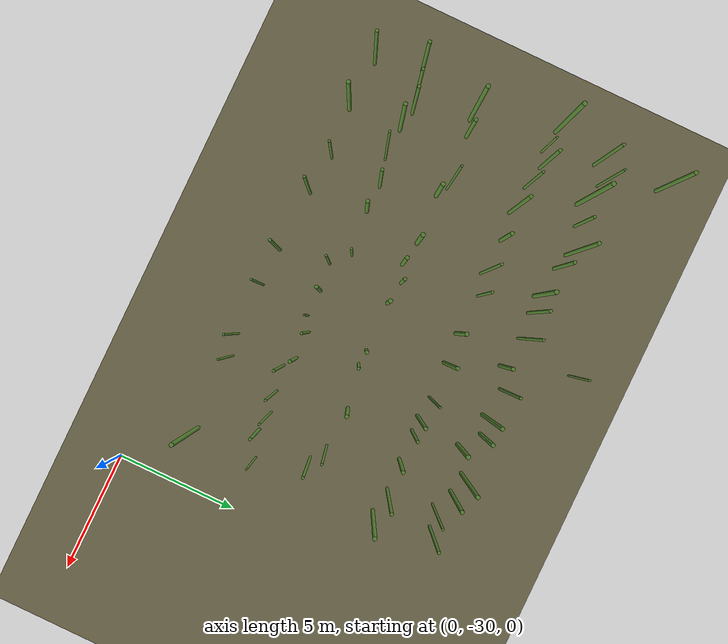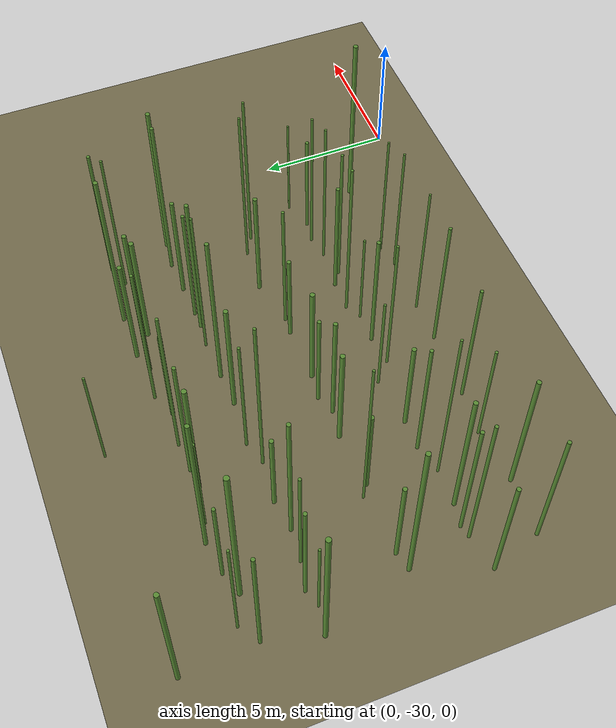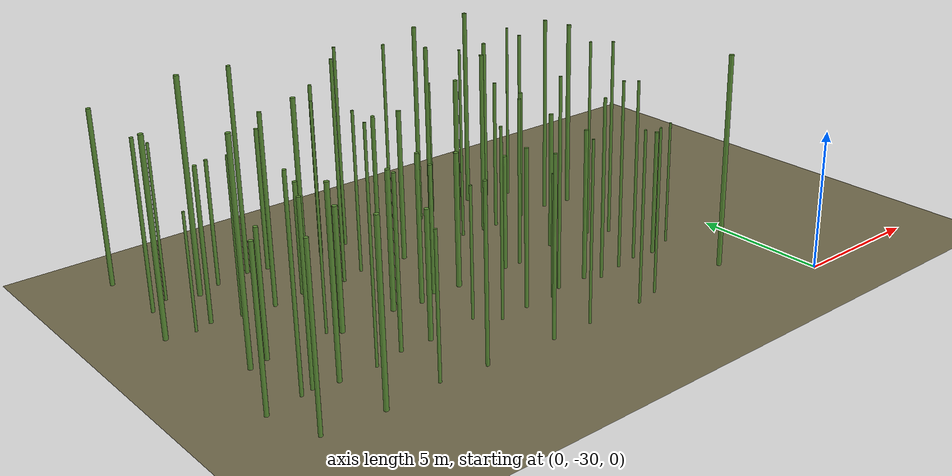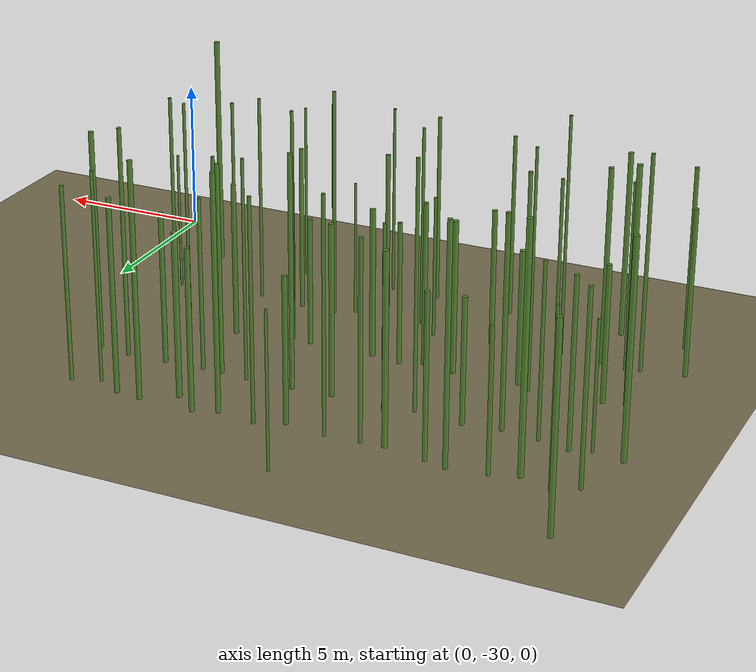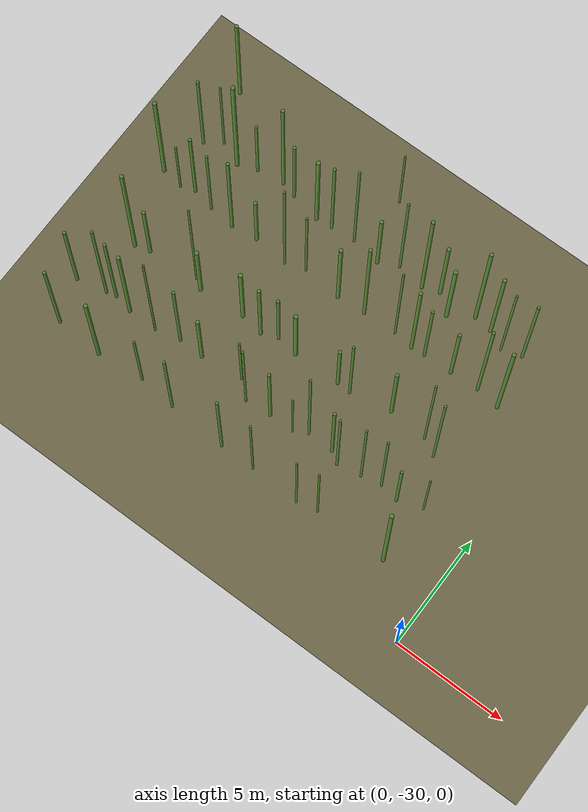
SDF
<sdf version="1.9">
 <world name="bamboo_field">
  <model name="ground_plane">
   <static>true</static>
   <link name="link">
    <collision name="collision">
     <geometry><plane><normal>0 0 1</normal><size>80.0 80.0</size></plane></geometry>
    </collision>
    <visual name="visual">
     <geometry><plane><normal>0 0 1</normal><size>80.0 80.0</size></plane></geometry>
     <material><diffuse>0.45 0.42 0.30 1</diffuse></material>
    </visual>
   </link>
  </model>
  <model name="bamboo_285">
   <static>true</static>
   <pose>-18.701338067859933 -27.532570651147655 2.987824840683638 0 0 0</pose>
   <link name="link">
    <collision name="collision">
     <geometry>
      <cylinder><radius>0.06716502417784874</radius><length>5.975649681367276</length></cylinder>
     </geometry>
    </collision>
    <visual name="visual">
     <geometry>
      <cylinder><radius>0.06716502417784874</radius><length>5.975649681367276</length></cylinder>
     </geometry>
     <material><diffuse>0.35 0.55 0.20 1</diffuse><specular>0.1 0.1 0.1 1</specular></material>
    </visual>
   </link>
  </model>
  <model name="bamboo_288">
   <static>true</static>
   <pose>-16.593467443221563 -27.659833370765284 3.0305613179195916 0 0 0</pose>
   <link name="link">
    <collision name="collision">
     <geometry>
      <cylinder><radius>0.08134949126381548</radius><length>6.061122635839183</length></cylinder>
     </geometry>
    </collision>
    <visual name="visual">
     <geometry>
      <cylinder><radius>0.08134949126381548</radius><length>6.061122635839183</length></cylinder>
     </geometry>
     <material><diffuse>0.35 0.55 0.20 1</diffuse><specular>0.1 0.1 0.1 1</specular></material>
    </visual>
   </link>
  </model>
  <model name="bamboo_289">
   <static>true</static>
   <pose>-14.523201077415425 -27.46048809229381 2.4710425056030676 0 0 0</pose>
   <link name="link">
    <collision name="collision">
     <geometry>
      <cylinder><radius>0.05303926385327219</radius><length>4.942085011206135</length></cylinder>
     </geometry>
    </collision>
    <visual name="visual">
     <geometry>
      <cylinder><radius>0.05303926385327219</radius><length>4.942085011206135</length></cylinder>
     </geometry>
     <material><diffuse>0.35 0.55 0.20 1</diffuse><specular>0.1 0.1 0.1 1</specular></material>
    </visual>
   </link>
  </model>
  <model name="bamboo_291">
   <static>true</static>
   <pose>-12.856179599792831 -27.635822543580673 3.0050409424767794 0 0 0</pose>
   <link name="link">
    <collision name="collision">
     <geometry>
      <cylinder><radius>0.060270830648419864</radius><length>6.010081884953559</length></cylinder>
     </geometry>
    </collision>
    <visual name="visual">
     <geometry>
      <cylinder><radius>0.060270830648419864</radius><length>6.010081884953559</length></cylinder>
     </geometry>
     <material><diffuse>0.35 0.55 0.20 1</diffuse><specular>0.1 0.1 0.1 1</specular></material>
    </visual>
   </link>
  </model>
  <model name="bamboo_293">
   <static>true</static>
   <pose>-10.26324553629423 -27.75205008676701 3.0984690176367295 0 0 0</pose>
   <link name="link">
    <collision name="collision">
     <geometry>
      <cylinder><radius>0.060792280771561236</radius><length>6.196938035273459</length></cylinder>
     </geometry>
    </collision>
    <visual name="visual">
     <geometry>
      <cylinder><radius>0.060792280771561236</radius><length>6.196938035273459</length></cylinder>
     </geometry>
     <material><diffuse>0.35 0.55 0.20 1</diffuse><specular>0.1 0.1 0.1 1</specular></material>
    </visual>
   </link>
  </model>
  <model name="bamboo_295">
   <static>true</static>
   <pose>-8.70525759008561 -27.744957994054598 3.1283374445469496 0 0 0</pose>
   <link name="link">
    <collision name="collision">
     <geometry>
      <cylinder><radius>0.04390513610737201</radius><length>6.256674889093899</length></cylinder>
     </geometry>
    </collision>
    <visual name="visual">
     <geometry>
      <cylinder><radius>0.04390513610737201</radius><length>6.256674889093899</length></cylinder>
     </geometry>
     <material><diffuse>0.35 0.55 0.20 1</diffuse><specular>0.1 0.1 0.1 1</specular></material>
    </visual>
   </link>
  </model>
  <model name="bamboo_297">
   <static>true</static>
   <pose>-6.49804834849844 -27.810909858026402 3.020750708065669 0 0 0</pose>
   <link name="link">
    <collision name="collision">
     <geometry>
      <cylinder><radius>0.04454708222258439</radius><length>6.041501416131338</length></cylinder>
     </geometry>
    </collision>
    <visual name="visual">
     <geometry>
      <cylinder><radius>0.04454708222258439</radius><length>6.041501416131338</length></cylinder>
     </geometry>
     <material><diffuse>0.35 0.55 0.20 1</diffuse><specular>0.1 0.1 0.1 1</specular></material>
    </visual>
   </link>
  </model>
  <model name="bamboo_298">
   <static>true</static>
   <pose>-5.593992922653775 -27.62201641227475 2.9247566114778474 0 0 0</pose>
   <link name="link">
    <collision name="collision">
     <geometry>
      <cylinder><radius>0.04288683904662624</radius><length>5.849513222955695</length></cylinder>
     </geometry>
    </collision>
    <visual name="visual">
     <geometry>
      <cylinder><radius>0.04288683904662624</radius><length>5.849513222955695</length></cylinder>
     </geometry>
     <material><diffuse>0.35 0.55 0.20 1</diffuse><specular>0.1 0.1 0.1 1</specular></material>
    </visual>
   </link>
  </model>
  <model name="bamboo_302">
   <static>true</static>
   <pose>-2.351308933194271 -27.65040122028117 3.8135346230491454 0 0 0</pose>
   <link name="link">
    <collision name="collision">
     <geometry>
      <cylinder><radius>0.08348101426553542</radius><length>7.627069246098291</length></cylinder>
     </geometry>
    </collision>
    <visual name="visual">
     <geometry>
      <cylinder><radius>0.08348101426553542</radius><length>7.627069246098291</length></cylinder>
     </geometry>
     <material><diffuse>0.35 0.55 0.20 1</diffuse><specular>0.1 0.1 0.1 1</specular></material>
    </visual>
   </link>
  </model>
  <model name="bamboo_362">
   <static>true</static>
   <pose>-19.283125086878105 -25.676017658417912 2.7100176388969794 0 0 0</pose>
   <link name="link">
    <collision name="collision">
     <geometry>
      <cylinder><radius>0.07288008222903827</radius><length>5.420035277793959</length></cylinder>
     </geometry>
    </collision>
    <visual name="visual">
     <geometry>
      <cylinder><radius>0.07288008222903827</radius><length>5.420035277793959</length></cylinder>
     </geometry>
     <material><diffuse>0.35 0.55 0.20 1</diffuse><specular>0.1 0.1 0.1 1</specular></material>
    </visual>
   </link>
  </model>
  <model name="bamboo_363">
   <static>true</static>
   <pose>-17.966579953686015 -25.40570646316428 3.5053655554592114 0 0 0</pose>
   <link name="link">
    <collision name="collision">
     <geometry>
      <cylinder><radius>0.059980887311254116</radius><length>7.010731110918423</length></cylinder>
     </geometry>
    </collision>
    <visual name="visual">
     <geometry>
      <cylinder><radius>0.059980887311254116</radius><length>7.010731110918423</length></cylinder>
     </geometry>
     <material><diffuse>0.35 0.55 0.20 1</diffuse><specular>0.1 0.1 0.1 1</specular></material>
    </visual>
   </link>
  </model>
  <model name="bamboo_364">
   <static>true</static>
   <pose>-17.531999782105057 -25.304360565098108 3.037595533698699 0 0 0</pose>
   <link name="link">
    <collision name="collision">
     <geometry>
      <cylinder><radius>0.06553381202625223</radius><length>6.075191067397398</length></cylinder>
     </geometry>
    </collision>
    <visual name="visual">
     <geometry>
      <cylinder><radius>0.06553381202625223</radius><length>6.075191067397398</length></cylinder>
     </geometry>
     <material><diffuse>0.35 0.55 0.20 1</diffuse><specular>0.1 0.1 0.1 1</specular></material>
    </visual>
   </link>
  </model>
  <model name="bamboo_365">
   <static>true</static>
   <pose>-16.709725121236083 -25.465548172567743 3.1771799130802947 0 0 0</pose>
   <link name="link">
    <collision name="collision">
     <geometry>
      <cylinder><radius>0.0786171116231216</radius><length>6.354359826160589</length></cylinder>
     </geometry>
    </collision>
    <visual name="visual">
     <geometry>
      <cylinder><radius>0.0786171116231216</radius><length>6.354359826160589</length></cylinder>
     </geometry>
     <material><diffuse>0.35 0.55 0.20 1</diffuse><specular>0.1 0.1 0.1 1</specular></material>
    </visual>
   </link>
  </model>
  <model name="bamboo_366">
   <static>true</static>
   <pose>-15.384663311967223 -25.488702103159127 3.8813523162923858 0 0 0</pose>
   <link name="link">
    <collision name="collision">
     <geometry>
      <cylinder><radius>0.04580346689794873</radius><length>7.7627046325847715</length></cylinder>
     </geometry>
    </collision>
    <visual name="visual">
     <geometry>
      <cylinder><radius>0.04580346689794873</radius><length>7.7627046325847715</length></cylinder>
     </geometry>
     <material><diffuse>0.35 0.55 0.20 1</diffuse><specular>0.1 0.1 0.1 1</specular></material>
    </visual>
   </link>
  </model>
  <model name="bamboo_367">
   <static>true</static>
   <pose>-14.294986724867837 -25.21929105802084 2.952325062418327 0 0 0</pose>
   <link name="link">
    <collision name="collision">
     <geometry>
      <cylinder><radius>0.06414629993896942</radius><length>5.904650124836654</length></cylinder>
     </geometry>
    </collision>
    <visual name="visual">
     <geometry>
      <cylinder><radius>0.06414629993896942</radius><length>5.904650124836654</length></cylinder>
     </geometry>
     <material><diffuse>0.35 0.55 0.20 1</diffuse><specular>0.1 0.1 0.1 1</specular></material>
    </visual>
   </link>
  </model>
  <model name="bamboo_368">
   <static>true</static>
   <pose>-13.179713086339039 -25.253446401793006 2.2301705333975717 0 0 0</pose>
   <link name="link">
    <collision name="collision">
     <geometry>
      <cylinder><radius>0.08050929684593491</radius><length>4.460341066795143</length></cylinder>
     </geometry>
    </collision>
    <visual name="visual">
     <geometry>
      <cylinder><radius>0.08050929684593491</radius><length>4.460341066795143</length></cylinder>
     </geometry>
     <material><diffuse>0.35 0.55 0.20 1</diffuse><specular>0.1 0.1 0.1 1</specular></material>
    </visual>
   </link>
  </model>
  <model name="bamboo_369">
   <static>true</static>
   <pose>-11.317828903837306 -25.036101508673642 2.320271422430719 0 0 0</pose>
   <link name="link">
    <collision name="collision">
     <geometry>
      <cylinder><radius>0.0487226616412067</radius><length>4.640542844861438</length></cylinder>
     </geometry>
    </collision>
    <visual name="visual">
     <geometry>
      <cylinder><radius>0.0487226616412067</radius><length>4.640542844861438</length></cylinder>
     </geometry>
     <material><diffuse>0.35 0.55 0.20 1</diffuse><specular>0.1 0.1 0.1 1</specular></material>
    </visual>
   </link>
  </model>
  <model name="bamboo_370">
   <static>true</static>
   <pose>-10.614486834915148 -25.686590751847735 3.2809577533201564 0 0 0</pose>
   <link name="link">
    <collision name="collision">
     <geometry>
      <cylinder><radius>0.049222588757569685</radius><length>6.561915506640313</length></cylinder>
     </geometry>
    </collision>
    <visual name="visual">
     <geometry>
      <cylinder><radius>0.049222588757569685</radius><length>6.561915506640313</length></cylinder>
     </geometry>
     <material><diffuse>0.35 0.55 0.20 1</diffuse><specular>0.1 0.1 0.1 1</specular></material>
    </visual>
   </link>
  </model>
  <model name="bamboo_371">
   <static>true</static>
   <pose>-9.478023245495065 -25.562976208330284 2.777671560711414 0 0 0</pose>
   <link name="link">
    <collision name="collision">
     <geometry>
      <cylinder><radius>0.06961015791801842</radius><length>5.555343121422828</length></cylinder>
     </geometry>
    </collision>
    <visual name="visual">
     <geometry>
      <cylinder><radius>0.06961015791801842</radius><length>5.555343121422828</length></cylinder>
     </geometry>
     <material><diffuse>0.35 0.55 0.20 1</diffuse><specular>0.1 0.1 0.1 1</specular></material>
    </visual>
   </link>
  </model>
  <model name="bamboo_372">
   <static>true</static>
   <pose>-8.360022447515762 -25.576153458944944 2.2035040974542848 0 0 0</pose>
   <link name="link">
    <collision name="collision">
     <geometry>
      <cylinder><radius>0.04312818757345822</radius><length>4.4070081949085695</length></cylinder>
     </geometry>
    </collision>
    <visual name="visual">
     <geometry>
      <cylinder><radius>0.04312818757345822</radius><length>4.4070081949085695</length></cylinder>
     </geometry>
     <material><diffuse>0.35 0.55 0.20 1</diffuse><specular>0.1 0.1 0.1 1</specular></material>
    </visual>
   </link>
  </model>
  <model name="bamboo_373">
   <static>true</static>
   <pose>-7.770613500143707 -25.259649333921104 3.7252730949146144 0 0 0</pose>
   <link name="link">
    <collision name="collision">
     <geometry>
      <cylinder><radius>0.053117669772618045</radius><length>7.450546189829229</length></cylinder>
     </geometry>
    </collision>
    <visual name="visual">
     <geometry>
      <cylinder><radius>0.053117669772618045</radius><length>7.450546189829229</length></cylinder>
     </geometry>
     <material><diffuse>0.35 0.55 0.20 1</diffuse><specular>0.1 0.1 0.1 1</specular></material>
    </visual>
   </link>
  </model>
  <model name="bamboo_374">
   <static>true</static>
   <pose>-6.609363220301266 -25.27487146835191 2.695849274873509 0 0 0</pose>
   <link name="link">
    <collision name="collision">
     <geometry>
      <cylinder><radius>0.06935023572826089</radius><length>5.391698549747018</length></cylinder>
     </geometry>
    </collision>
    <visual name="visual">
     <geometry>
      <cylinder><radius>0.06935023572826089</radius><length>5.391698549747018</length></cylinder>
     </geometry>
     <material><diffuse>0.35 0.55 0.20 1</diffuse><specular>0.1 0.1 0.1 1</specular></material>
    </visual>
   </link>
  </model>
  <model name="bamboo_375">
   <static>true</static>
   <pose>-6.116404002429464 -25.61326190513191 3.228969031425839 0 0 0</pose>
   <link name="link">
    <collision name="collision">
     <geometry>
      <cylinder><radius>0.054872241734967596</radius><length>6.457938062851678</length></cylinder>
     </geometry>
    </collision>
    <visual name="visual">
     <geometry>
      <cylinder><radius>0.054872241734967596</radius><length>6.457938062851678</length></cylinder>
     </geometry>
     <material><diffuse>0.35 0.55 0.20 1</diffuse><specular>0.1 0.1 0.1 1</specular></material>
    </visual>
   </link>
  </model>
  <model name="bamboo_376">
   <static>true</static>
   <pose>-5.0710083107599075 -25.414257969539527 3.3868730834328913 0 0 0</pose>
   <link name="link">
    <collision name="collision">
     <geometry>
      <cylinder><radius>0.04915222591657417</radius><length>6.773746166865783</length></cylinder>
     </geometry>
    </collision>
    <visual name="visual">
     <geometry>
      <cylinder><radius>0.04915222591657417</radius><length>6.773746166865783</length></cylinder>
     </geometry>
     <material><diffuse>0.35 0.55 0.20 1</diffuse><specular>0.1 0.1 0.1 1</specular></material>
    </visual>
   </link>
  </model>
  <model name="bamboo_377">
   <static>true</static>
   <pose>-4.188035751416549 -25.25534327733144 3.2710032841172705 0 0 0</pose>
   <link name="link">
    <collision name="collision">
     <geometry>
      <cylinder><radius>0.049287684964638284</radius><length>6.542006568234541</length></cylinder>
     </geometry>
    </collision>
    <visual name="visual">
     <geometry>
      <cylinder><radius>0.049287684964638284</radius><length>6.542006568234541</length></cylinder>
     </geometry>
     <material><diffuse>0.35 0.55 0.20 1</diffuse><specular>0.1 0.1 0.1 1</specular></material>
    </visual>
   </link>
  </model>
  <model name="bamboo_378">
   <static>true</static>
   <pose>-3.3532729686992697 -25.391324664364753 2.280593070195594 0 0 0</pose>
   <link name="link">
    <collision name="collision">
     <geometry>
      <cylinder><radius>0.06448210130961043</radius><length>4.561186140391188</length></cylinder>
     </geometry>
    </collision>
    <visual name="visual">
     <geometry>
      <cylinder><radius>0.06448210130961043</radius><length>4.561186140391188</length></cylinder>
     </geometry>
     <material><diffuse>0.35 0.55 0.20 1</diffuse><specular>0.1 0.1 0.1 1</specular></material>
    </visual>
   </link>
  </model>
  <model name="bamboo_379">
   <static>true</static>
   <pose>-2.281383315451823 -25.03234498129695 2.273069429324992 0 0 0</pose>
   <link name="link">
    <collision name="collision">
     <geometry>
      <cylinder><radius>0.040479171978164065</radius><length>4.546138858649984</length></cylinder>
     </geometry>
    </collision>
    <visual name="visual">
     <geometry>
      <cylinder><radius>0.040479171978164065</radius><length>4.546138858649984</length></cylinder>
     </geometry>
     <material><diffuse>0.35 0.55 0.20 1</diffuse><specular>0.1 0.1 0.1 1</specular></material>
    </visual>
   </link>
  </model>
  <model name="bamboo_428">
   <static>true</static>
   <pose>-18.300917698132146 -23.091688563610973 3.7543972285031497 0 0 0</pose>
   <link name="link">
    <collision name="collision">
     <geometry>
      <cylinder><radius>0.0819787003448087</radius><length>7.508794457006299</length></cylinder>
     </geometry>
    </collision>
    <visual name="visual">
     <geometry>
      <cylinder><radius>0.0819787003448087</radius><length>7.508794457006299</length></cylinder>
     </geometry>
     <material><diffuse>0.35 0.55 0.20 1</diffuse><specular>0.1 0.1 0.1 1</specular></material>
    </visual>
   </link>
  </model>
  <model name="bamboo_429">
   <static>true</static>
   <pose>-17.632819199220148 -22.925994675821272 2.207898038703119 0 0 0</pose>
   <link name="link">
    <collision name="collision">
     <geometry>
      <cylinder><radius>0.07636075195204862</radius><length>4.415796077406238</length></cylinder>
     </geometry>
    </collision>
    <visual name="visual">
     <geometry>
      <cylinder><radius>0.07636075195204862</radius><length>4.415796077406238</length></cylinder>
     </geometry>
     <material><diffuse>0.35 0.55 0.20 1</diffuse><specular>0.1 0.1 0.1 1</specular></material>
    </visual>
   </link>
  </model>
  <model name="bamboo_430">
   <static>true</static>
   <pose>-15.379992852427158 -22.72888053904145 3.8425488059442126 0 0 0</pose>
   <link name="link">
    <collision name="collision">
     <geometry>
      <cylinder><radius>0.04465133191790441</radius><length>7.685097611888425</length></cylinder>
     </geometry>
    </collision>
    <visual name="visual">
     <geometry>
      <cylinder><radius>0.04465133191790441</radius><length>7.685097611888425</length></cylinder>
     </geometry>
     <material><diffuse>0.35 0.55 0.20 1</diffuse><specular>0.1 0.1 0.1 1</specular></material>
    </visual>
   </link>
  </model>
  <model name="bamboo_431">
   <static>true</static>
   <pose>-14.960851415163537 -22.99925229681021 2.169804835032979 0 0 0</pose>
   <link name="link">
    <collision name="collision">
     <geometry>
      <cylinder><radius>0.08872773950841255</radius><length>4.339609670065958</length></cylinder>
     </geometry>
    </collision>
    <visual name="visual">
     <geometry>
      <cylinder><radius>0.08872773950841255</radius><length>4.339609670065958</length></cylinder>
     </geometry>
     <material><diffuse>0.35 0.55 0.20 1</diffuse><specular>0.1 0.1 0.1 1</specular></material>
    </visual>
   </link>
  </model>
  <model name="bamboo_432">
   <static>true</static>
   <pose>-12.88994821357981 -22.872205751199047 2.473543469483793 0 0 0</pose>
   <link name="link">
    <collision name="collision">
     <geometry>
      <cylinder><radius>0.08821091373663703</radius><length>4.947086938967586</length></cylinder>
     </geometry>
    </collision>
    <visual name="visual">
     <geometry>
      <cylinder><radius>0.08821091373663703</radius><length>4.947086938967586</length></cylinder>
     </geometry>
     <material><diffuse>0.35 0.55 0.20 1</diffuse><specular>0.1 0.1 0.1 1</specular></material>
    </visual>
   </link>
  </model>
  <model name="bamboo_433">
   <static>true</static>
   <pose>-11.86194603174382 -23.04043078692414 2.636115438532201 0 0 0</pose>
   <link name="link">
    <collision name="collision">
     <geometry>
      <cylinder><radius>0.0767676434391184</radius><length>5.272230877064402</length></cylinder>
     </geometry>
    </collision>
    <visual name="visual">
     <geometry>
      <cylinder><radius>0.0767676434391184</radius><length>5.272230877064402</length></cylinder>
     </geometry>
     <material><diffuse>0.35 0.55 0.20 1</diffuse><specular>0.1 0.1 0.1 1</specular></material>
    </visual>
   </link>
  </model>
  <model name="bamboo_434">
   <static>true</static>
   <pose>-11.156167605025008 -22.766473413280217 2.3108211026438736 0 0 0</pose>
   <link name="link">
    <collision name="collision">
     <geometry>
      <cylinder><radius>0.06923540179020644</radius><length>4.621642205287747</length></cylinder>
     </geometry>
    </collision>
    <visual name="visual">
     <geometry>
      <cylinder><radius>0.06923540179020644</radius><length>4.621642205287747</length></cylinder>
     </geometry>
     <material><diffuse>0.35 0.55 0.20 1</diffuse><specular>0.1 0.1 0.1 1</specular></material>
    </visual>
   </link>
  </model>
  <model name="bamboo_435">
   <static>true</static>
   <pose>-10.192809668002406 -22.907206443145583 2.415272451220707 0 0 0</pose>
   <link name="link">
    <collision name="collision">
     <geometry>
      <cylinder><radius>0.08823173611251144</radius><length>4.830544902441414</length></cylinder>
     </geometry>
    </collision>
    <visual name="visual">
     <geometry>
      <cylinder><radius>0.08823173611251144</radius><length>4.830544902441414</length></cylinder>
     </geometry>
     <material><diffuse>0.35 0.55 0.20 1</diffuse><specular>0.1 0.1 0.1 1</specular></material>
    </visual>
   </link>
  </model>
  <model name="bamboo_436">
   <static>true</static>
   <pose>-8.101090385337203 -22.863256430766523 2.0806596162173268 0 0 0</pose>
   <link name="link">
    <collision name="collision">
     <geometry>
      <cylinder><radius>0.07484389916185383</radius><length>4.1613192324346535</length></cylinder>
     </geometry>
    </collision>
    <visual name="visual">
     <geometry>
      <cylinder><radius>0.07484389916185383</radius><length>4.1613192324346535</length></cylinder>
     </geometry>
     <material><diffuse>0.35 0.55 0.20 1</diffuse><specular>0.1 0.1 0.1 1</specular></material>
    </visual>
   </link>
  </model>
  <model name="bamboo_437">
   <static>true</static>
   <pose>-7.475724185619904 -22.910595237081022 3.026919350757459 0 0 0</pose>
   <link name="link">
    <collision name="collision">
     <geometry>
      <cylinder><radius>0.05778713777521419</radius><length>6.053838701514918</length></cylinder>
     </geometry>
    </collision>
    <visual name="visual">
     <geometry>
      <cylinder><radius>0.05778713777521419</radius><length>6.053838701514918</length></cylinder>
     </geometry>
     <material><diffuse>0.35 0.55 0.20 1</diffuse><specular>0.1 0.1 0.1 1</specular></material>
    </visual>
   </link>
  </model>
  <model name="bamboo_438">
   <static>true</static>
   <pose>-5.668294736556854 -22.529984264575184 2.499705256443102 0 0 0</pose>
   <link name="link">
    <collision name="collision">
     <geometry>
      <cylinder><radius>0.07740392236043546</radius><length>4.999410512886204</length></cylinder>
     </geometry>
    </collision>
    <visual name="visual">
     <geometry>
      <cylinder><radius>0.07740392236043546</radius><length>4.999410512886204</length></cylinder>
     </geometry>
     <material><diffuse>0.35 0.55 0.20 1</diffuse><specular>0.1 0.1 0.1 1</specular></material>
    </visual>
   </link>
  </model>
  <model name="bamboo_439">
   <static>true</static>
   <pose>-3.9430910416319196 -22.6515037079632 3.6473468303767116 0 0 0</pose>
   <link name="link">
    <collision name="collision">
     <geometry>
      <cylinder><radius>0.0465357618771989</radius><length>7.294693660753423</length></cylinder>
     </geometry>
    </collision>
    <visual name="visual">
     <geometry>
      <cylinder><radius>0.0465357618771989</radius><length>7.294693660753423</length></cylinder>
     </geometry>
     <material><diffuse>0.35 0.55 0.20 1</diffuse><specular>0.1 0.1 0.1 1</specular></material>
    </visual>
   </link>
  </model>
  <model name="bamboo_440">
   <static>true</static>
   <pose>-3.2305247281026883 -23.047581566753042 3.6254941832272287 0 0 0</pose>
   <link name="link">
    <collision name="collision">
     <geometry>
      <cylinder><radius>0.05294103261732629</radius><length>7.250988366454457</length></cylinder>
     </geometry>
    </collision>
    <visual name="visual">
     <geometry>
      <cylinder><radius>0.05294103261732629</radius><length>7.250988366454457</length></cylinder>
     </geometry>
     <material><diffuse>0.35 0.55 0.20 1</diffuse><specular>0.1 0.1 0.1 1</specular></material>
    </visual>
   </link>
  </model>
  <model name="bamboo_493">
   <static>true</static>
   <pose>-19.36022042342385 -19.748607264582947 3.409267890440073 0 0 0</pose>
   <link name="link">
    <collision name="collision">
     <geometry>
      <cylinder><radius>0.0859015534670558</radius><length>6.818535780880146</length></cylinder>
     </geometry>
    </collision>
    <visual name="visual">
     <geometry>
      <cylinder><radius>0.0859015534670558</radius><length>6.818535780880146</length></cylinder>
     </geometry>
     <material><diffuse>0.35 0.55 0.20 1</diffuse><specular>0.1 0.1 0.1 1</specular></material>
    </visual>
   </link>
  </model>
  <model name="bamboo_494">
   <static>true</static>
   <pose>-18.38922738930632 -19.909231153348824 2.061126384763987 0 0 0</pose>
   <link name="link">
    <collision name="collision">
     <geometry><cylinder><radius>0.046193642944535</radius><length>4.122252769527974</length></cylinder></geometry>
    </collision>
    <visual name="visual">
     <geometry><cylinder><radius>0.046193642944535</radius><length>4.122252769527974</length></cylinder></geometry>
     <material><diffuse>0.35 0.55 0.20 1</diffuse><specular>0.1 0.1 0.1 1</specular></material>
    </visual>
   </link>
  </model>
  <model name="bamboo_495">
   <static>true</static>
   <pose>-17.764461114552997 -19.69891732454679 2.6995198032893093 0 0 0</pose>
   <link name="link">
    <collision name="collision">
     <geometry>
      <cylinder><radius>0.06934401242112134</radius><length>5.399039606578619</length></cylinder>
     </geometry>
    </collision>
    <visual name="visual">
     <geometry>
      <cylinder><radius>0.06934401242112134</radius><length>5.399039606578619</length></cylinder>
     </geometry>
     <material><diffuse>0.35 0.55 0.20 1</diffuse><specular>0.1 0.1 0.1 1</specular></material>
    </visual>
   </link>
  </model>
  <model name="bamboo_496">
   <static>true</static>
   <pose>-16.765301007002485 -19.92448102605112 2.773131341481969 0 0 0</pose>
   <link name="link">
    <collision name="collision">
     <geometry>
      <cylinder><radius>0.05425346882173809</radius><length>5.546262682963938</length></cylinder>
     </geometry>
    </collision>
    <visual name="visual">
     <geometry>
      <cylinder><radius>0.05425346882173809</radius><length>5.546262682963938</length></cylinder>
     </geometry>
     <material><diffuse>0.35 0.55 0.20 1</diffuse><specular>0.1 0.1 0.1 1</specular></material>
    </visual>
   </link>
  </model>
  <model name="bamboo_497">
   <static>true</static>
   <pose>-15.605010641752347 -20.038406631218447 3.3553904921819413 0 0 0</pose>
   <link name="link">
    <collision name="collision">
     <geometry>
      <cylinder><radius>0.07236899458807411</radius><length>6.710780984363883</length></cylinder>
     </geometry>
    </collision>
    <visual name="visual">
     <geometry>
      <cylinder><radius>0.07236899458807411</radius><length>6.710780984363883</length></cylinder>
     </geometry>
     <material><diffuse>0.35 0.55 0.20 1</diffuse><specular>0.1 0.1 0.1 1</specular></material>
    </visual>
   </link>
  </model>
  <model name="bamboo_498">
   <static>true</static>
   <pose>-14.447287397604148 -19.87190158084281 2.0177959721400915 0 0 0</pose>
   <link name="link">
    <collision name="collision">
     <geometry>
      <cylinder><radius>0.07837863642059256</radius><length>4.035591944280183</length></cylinder>
     </geometry>
    </collision>
    <visual name="visual">
     <geometry>
      <cylinder><radius>0.07837863642059256</radius><length>4.035591944280183</length></cylinder>
     </geometry>
     <material><diffuse>0.35 0.55 0.20 1</diffuse><specular>0.1 0.1 0.1 1</specular></material>
    </visual>
   </link>
  </model>
  <model name="bamboo_499">
   <static>true</static>
   <pose>-12.894017029595618 -20.028396908303595 3.934048886736753 0 0 0</pose>
   <link name="link">
    <collision name="collision">
     <geometry>
      <cylinder><radius>0.05527298491922784</radius><length>7.868097773473506</length></cylinder>
     </geometry>
    </collision>
    <visual name="visual">
     <geometry>
      <cylinder><radius>0.05527298491922784</radius><length>7.868097773473506</length></cylinder>
     </geometry>
     <material><diffuse>0.35 0.55 0.20 1</diffuse><specular>0.1 0.1 0.1 1</specular></material>
    </visual>
   </link>
  </model>
  <model name="bamboo_500">
   <static>true</static>
   <pose>-12.019307757119215 -19.748044093735864 2.933396030994431 0 0 0</pose>
   <link name="link">
    <collision name="collision">
     <geometry>
      <cylinder><radius>0.0525999354638938</radius><length>5.866792061988862</length></cylinder>
     </geometry>
    </collision>
    <visual name="visual">
     <geometry>
      <cylinder><radius>0.0525999354638938</radius><length>5.866792061988862</length></cylinder>
     </geometry>
     <material><diffuse>0.35 0.55 0.20 1</diffuse><specular>0.1 0.1 0.1 1</specular></material>
    </visual>
   </link>
  </model>
  <model name="bamboo_501">
   <static>true</static>
   <pose>-10.27673907956895 -19.898726595518717 2.7484595263221427 0 0 0</pose>
   <link name="link">
    <collision name="collision">
     <geometry>
      <cylinder><radius>0.08216419750428886</radius><length>5.4969190526442855</length></cylinder>
     </geometry>
    </collision>
    <visual name="visual">
     <geometry>
      <cylinder><radius>0.08216419750428886</radius><length>5.4969190526442855</length></cylinder>
     </geometry>
     <material><diffuse>0.35 0.55 0.20 1</diffuse><specular>0.1 0.1 0.1 1</specular></material>
    </visual>
   </link>
  </model>
  <model name="bamboo_502">
   <static>true</static>
   <pose>-9.002150536005452 -19.827296025865074 3.722983200503661 0 0 0</pose>
   <link name="link">
    <collision name="collision">
     <geometry>
      <cylinder><radius>0.07202973728073278</radius><length>7.445966401007322</length></cylinder>
     </geometry>
    </collision>
    <visual name="visual">
     <geometry>
      <cylinder><radius>0.07202973728073278</radius><length>7.445966401007322</length></cylinder>
     </geometry>
     <material><diffuse>0.35 0.55 0.20 1</diffuse><specular>0.1 0.1 0.1 1</specular></material>
    </visual>
   </link>
  </model>
  <model name="bamboo_503">
   <static>true</static>
   <pose>-7.4982229211597815 -19.761260792921856 3.5309487766072465 0 0 0</pose>
   <link name="link">
    <collision name="collision">
     <geometry>
      <cylinder><radius>0.04749646481770783</radius><length>7.061897553214493</length></cylinder>
     </geometry>
    </collision>
    <visual name="visual">
     <geometry>
      <cylinder><radius>0.04749646481770783</radius><length>7.061897553214493</length></cylinder>
     </geometry>
     <material><diffuse>0.35 0.55 0.20 1</diffuse><specular>0.1 0.1 0.1 1</specular></material>
    </visual>
   </link>
  </model>
  <model name="bamboo_504">
   <static>true</static>
   <pose>-6.602160116385675 -19.866281269441618 3.3615115007747636 0 0 0</pose>
   <link name="link">
    <collision name="collision">
     <geometry>
      <cylinder><radius>0.07302651618405645</radius><length>6.723023001549527</length></cylinder>
     </geometry>
    </collision>
    <visual name="visual">
     <geometry>
      <cylinder><radius>0.07302651618405645</radius><length>6.723023001549527</length></cylinder>
     </geometry>
     <material><diffuse>0.35 0.55 0.20 1</diffuse><specular>0.1 0.1 0.1 1</specular></material>
    </visual>
   </link>
  </model>
  <model name="bamboo_505">
   <static>true</static>
   <pose>-5.983347411490688 -19.829413397202217 2.7765498420109167 0 0 0</pose>
   <link name="link">
    <collision name="collision">
     <geometry>
      <cylinder><radius>0.060928284304067076</radius><length>5.553099684021833</length></cylinder>
     </geometry>
    </collision>
    <visual name="visual">
     <geometry>
      <cylinder><radius>0.060928284304067076</radius><length>5.553099684021833</length></cylinder>
     </geometry>
     <material><diffuse>0.35 0.55 0.20 1</diffuse><specular>0.1 0.1 0.1 1</specular></material>
    </visual>
   </link>
  </model>
  <model name="bamboo_506">
   <static>true</static>
   <pose>-4.705009170173499 -19.775633730058047 2.444726387952538 0 0 0</pose>
   <link name="link">
    <collision name="collision">
     <geometry>
      <cylinder><radius>0.07632749382904518</radius><length>4.889452775905076</length></cylinder>
     </geometry>
    </collision>
    <visual name="visual">
     <geometry>
      <cylinder><radius>0.07632749382904518</radius><length>4.889452775905076</length></cylinder>
     </geometry>
     <material><diffuse>0.35 0.55 0.20 1</diffuse><specular>0.1 0.1 0.1 1</specular></material>
    </visual>
   </link>
  </model>
  <model name="bamboo_507">
   <static>true</static>
   <pose>-3.428196052834946 -19.71151531972585 3.6908384884891907 0 0 0</pose>
   <link name="link">
    <collision name="collision">
     <geometry>
      <cylinder><radius>0.06536574278034077</radius><length>7.381676976978381</length></cylinder>
     </geometry>
    </collision>
    <visual name="visual">
     <geometry>
      <cylinder><radius>0.06536574278034077</radius><length>7.381676976978381</length></cylinder>
     </geometry>
     <material><diffuse>0.35 0.55 0.20 1</diffuse><specular>0.1 0.1 0.1 1</specular></material>
    </visual>
   </link>
  </model>
  <model name="bamboo_508">
   <static>true</static>
   <pose>-2.3648632901435884 -19.849263010262376 3.5258364366386052 0 0 0</pose>
   <link name="link">
    <collision name="collision">
     <geometry>
      <cylinder><radius>0.0804171934571235</radius><length>7.0516728732772105</length></cylinder>
     </geometry>
    </collision>
    <visual name="visual">
     <geometry>
      <cylinder><radius>0.0804171934571235</radius><length>7.0516728732772105</length></cylinder>
     </geometry>
     <material><diffuse>0.35 0.55 0.20 1</diffuse><specular>0.1 0.1 0.1 1</specular></material>
    </visual>
   </link>
  </model>
  <model name="bamboo_550">
   <static>true</static>
   <pose>-18.811742869813155 -17.78498991872322 3.016665798143767 0 0 0</pose>
   <link name="link">
    <collision name="collision">
     <geometry>
      <cylinder><radius>0.06414659817679631</radius><length>6.033331596287534</length></cylinder>
     </geometry>
    </collision>
    <visual name="visual">
     <geometry>
      <cylinder><radius>0.06414659817679631</radius><length>6.033331596287534</length></cylinder>
     </geometry>
     <material><diffuse>0.35 0.55 0.20 1</diffuse><specular>0.1 0.1 0.1 1</specular></material>
    </visual>
   </link>
  </model>
  <model name="bamboo_551">
   <static>true</static>
   <pose>-18.104752520098355 -17.291144521183647 2.7748111584413317 0 0 0</pose>
   <link name="link">
    <collision name="collision">
     <geometry>
      <cylinder><radius>0.04641908910257889</radius><length>5.5496223168826635</length></cylinder>
     </geometry>
    </collision>
    <visual name="visual">
     <geometry>
      <cylinder><radius>0.04641908910257889</radius><length>5.5496223168826635</length></cylinder>
     </geometry>
     <material><diffuse>0.35 0.55 0.20 1</diffuse><specular>0.1 0.1 0.1 1</specular></material>
    </visual>
   </link>
  </model>
  <model name="bamboo_552">
   <static>true</static>
   <pose>-17.089828428237624 -17.717514509705442 3.8318204833941985 0 0 0</pose>
   <link name="link">
    <collision name="collision">
     <geometry>
      <cylinder><radius>0.08897503801025214</radius><length>7.663640966788397</length></cylinder>
     </geometry>
    </collision>
    <visual name="visual">
     <geometry>
      <cylinder><radius>0.08897503801025214</radius><length>7.663640966788397</length></cylinder>
     </geometry>
     <material><diffuse>0.35 0.55 0.20 1</diffuse><specular>0.1 0.1 0.1 1</specular></material>
    </visual>
   </link>
  </model>
  <model name="bamboo_553">
   <static>true</static>
   <pose>-16.249131441583643 -17.41902162624673 2.2667436620321872 0 0 0</pose>
   <link name="link">
    <collision name="collision">
     <geometry>
      <cylinder><radius>0.06264228530406833</radius><length>4.5334873240643745</length></cylinder>
     </geometry>
    </collision>
    <visual name="visual">
     <geometry>
      <cylinder><radius>0.06264228530406833</radius><length>4.5334873240643745</length></cylinder>
     </geometry>
     <material><diffuse>0.35 0.55 0.20 1</diffuse><specular>0.1 0.1 0.1 1</specular></material>
    </visual>
   </link>
  </model>
  <model name="bamboo_554">
   <static>true</static>
   <pose>-15.04037047672121 -17.254173171450944 3.721415092258316 0 0 0</pose>
   <link name="link">
    <collision name="collision">
     <geometry>
      <cylinder><radius>0.07507471552036925</radius><length>7.442830184516632</length></cylinder>
     </geometry>
    </collision>
    <visual name="visual">
     <geometry>
      <cylinder><radius>0.07507471552036925</radius><length>7.442830184516632</length></cylinder>
     </geometry>
     <material><diffuse>0.35 0.55 0.20 1</diffuse><specular>0.1 0.1 0.1 1</specular></material>
    </visual>
   </link>
  </model>
  <model name="bamboo_555">
   <static>true</static>
   <pose>-14.343943705765898 -17.4383700265388 2.5811589909585013 0 0 0</pose>
   <link name="link">
    <collision name="collision">
     <geometry>
      <cylinder><radius>0.07120837946026941</radius><length>5.162317981917003</length></cylinder>
     </geometry>
    </collision>
    <visual name="visual">
     <geometry>
      <cylinder><radius>0.07120837946026941</radius><length>5.162317981917003</length></cylinder>
     </geometry>
     <material><diffuse>0.35 0.55 0.20 1</diffuse><specular>0.1 0.1 0.1 1</specular></material>
    </visual>
   </link>
  </model>
  <model name="bamboo_556">
   <static>true</static>
   <pose>-13.00709663229183 -17.68336464748502 3.0077868780864994 0 0 0</pose>
   <link name="link">
    <collision name="collision">
     <geometry>
      <cylinder><radius>0.08791632264025982</radius><length>6.015573756172999</length></cylinder>
     </geometry>
    </collision>
    <visual name="visual">
     <geometry>
      <cylinder><radius>0.08791632264025982</radius><length>6.015573756172999</length></cylinder>
     </geometry>
     <material><diffuse>0.35 0.55 0.20 1</diffuse><specular>0.1 0.1 0.1 1</specular></material>
    </visual>
   </link>
  </model>
  <model name="bamboo_557">
   <static>true</static>
   <pose>-12.279942846350957 -17.616797072486854 3.1412763885061983 0 0 0</pose>
   <link name="link">
    <collision name="collision">
     <geometry>
      <cylinder><radius>0.06401849611953134</radius><length>6.282552777012397</length></cylinder>
     </geometry>
    </collision>
    <visual name="visual">
     <geometry>
      <cylinder><radius>0.06401849611953134</radius><length>6.282552777012397</length></cylinder>
     </geometry>
     <material><diffuse>0.35 0.55 0.20 1</diffuse><specular>0.1 0.1 0.1 1</specular></material>
    </visual>
   </link>
  </model>
  <model name="bamboo_558">
   <static>true</static>
   <pose>-11.181992078108186 -17.54312063532828 3.6946021828410975 0 0 0</pose>
   <link name="link">
    <collision name="collision">
     <geometry>
      <cylinder><radius>0.054296399011268176</radius><length>7.389204365682195</length></cylinder>
     </geometry>
    </collision>
    <visual name="visual">
     <geometry>
      <cylinder><radius>0.054296399011268176</radius><length>7.389204365682195</length></cylinder>
     </geometry>
     <material><diffuse>0.35 0.55 0.20 1</diffuse><specular>0.1 0.1 0.1 1</specular></material>
    </visual>
   </link>
  </model>
  <model name="bamboo_559">
   <static>true</static>
   <pose>-9.868964011916932 -17.73363892045399 2.32187078868646 0 0 0</pose>
   <link name="link">
    <collision name="collision">
     <geometry><cylinder><radius>0.0775092509335027</radius><length>4.64374157737292</length></cylinder></geometry>
    </collision>
    <visual name="visual">
     <geometry><cylinder><radius>0.0775092509335027</radius><length>4.64374157737292</length></cylinder></geometry>
     <material><diffuse>0.35 0.55 0.20 1</diffuse><specular>0.1 0.1 0.1 1</specular></material>
    </visual>
   </link>
  </model>
  <model name="bamboo_560">
   <static>true</static>
   <pose>-9.011227701572611 -17.33921327338659 3.50718789609033 0 0 0</pose>
   <link name="link">
    <collision name="collision">
     <geometry>
      <cylinder><radius>0.054757028298080296</radius><length>7.01437579218066</length></cylinder>
     </geometry>
    </collision>
    <visual name="visual">
     <geometry>
      <cylinder><radius>0.054757028298080296</radius><length>7.01437579218066</length></cylinder>
     </geometry>
     <material><diffuse>0.35 0.55 0.20 1</diffuse><specular>0.1 0.1 0.1 1</specular></material>
    </visual>
   </link>
  </model>
  <model name="bamboo_561">
   <static>true</static>
   <pose>-7.773161252196047 -17.51614223872115 3.729682970409205 0 0 0</pose>
   <link name="link">
    <collision name="collision">
     <geometry><cylinder><radius>0.0769746240086425</radius><length>7.45936594081841</length></cylinder></geometry>
    </collision>
    <visual name="visual">
     <geometry><cylinder><radius>0.0769746240086425</radius><length>7.45936594081841</length></cylinder></geometry>
     <material><diffuse>0.35 0.55 0.20 1</diffuse><specular>0.1 0.1 0.1 1</specular></material>
    </visual>
   </link>
  </model>
  <model name="bamboo_562">
   <static>true</static>
   <pose>-7.032666480266432 -17.260492257856573 2.5752773090144405 0 0 0</pose>
   <link name="link">
    <collision name="collision">
     <geometry>
      <cylinder><radius>0.07994108762447852</radius><length>5.150554618028881</length></cylinder>
     </geometry>
    </collision>
    <visual name="visual">
     <geometry>
      <cylinder><radius>0.07994108762447852</radius><length>5.150554618028881</length></cylinder>
     </geometry>
     <material><diffuse>0.35 0.55 0.20 1</diffuse><specular>0.1 0.1 0.1 1</specular></material>
    </visual>
   </link>
  </model>
  <model name="bamboo_563">
   <static>true</static>
   <pose>-6.256302900550628 -17.899955959302474 2.625307961789268 0 0 0</pose>
   <link name="link">
    <collision name="collision">
     <geometry>
      <cylinder><radius>0.08879113610280631</radius><length>5.250615923578536</length></cylinder>
     </geometry>
    </collision>
    <visual name="visual">
     <geometry>
      <cylinder><radius>0.08879113610280631</radius><length>5.250615923578536</length></cylinder>
     </geometry>
     <material><diffuse>0.35 0.55 0.20 1</diffuse><specular>0.1 0.1 0.1 1</specular></material>
    </visual>
   </link>
  </model>
  <model name="bamboo_564">
   <static>true</static>
   <pose>-5.2612652301062495 -17.270991161723103 3.7402361846426704 0 0 0</pose>
   <link name="link">
    <collision name="collision">
     <geometry>
      <cylinder><radius>0.07904624464379427</radius><length>7.480472369285341</length></cylinder>
     </geometry>
    </collision>
    <visual name="visual">
     <geometry>
      <cylinder><radius>0.07904624464379427</radius><length>7.480472369285341</length></cylinder>
     </geometry>
     <material><diffuse>0.35 0.55 0.20 1</diffuse><specular>0.1 0.1 0.1 1</specular></material>
    </visual>
   </link>
  </model>
  <model name="bamboo_565">
   <static>true</static>
   <pose>-4.438031155815686 -17.36572890408909 3.0932302734024826 0 0 0</pose>
   <link name="link">
    <collision name="collision">
     <geometry>
      <cylinder><radius>0.0777553852604275</radius><length>6.186460546804965</length></cylinder>
     </geometry>
    </collision>
    <visual name="visual">
     <geometry>
      <cylinder><radius>0.0777553852604275</radius><length>6.186460546804965</length></cylinder>
     </geometry>
     <material><diffuse>0.35 0.55 0.20 1</diffuse><specular>0.1 0.1 0.1 1</specular></material>
    </visual>
   </link>
  </model>
  <model name="bamboo_566">
   <static>true</static>
   <pose>-3.643802503594696 -17.787375033376005 3.36531770340307 0 0 0</pose>
   <link name="link">
    <collision name="collision">
     <geometry>
      <cylinder><radius>0.04887129492441316</radius><length>6.73063540680614</length></cylinder>
     </geometry>
    </collision>
    <visual name="visual">
     <geometry>
      <cylinder><radius>0.04887129492441316</radius><length>6.73063540680614</length></cylinder>
     </geometry>
     <material><diffuse>0.35 0.55 0.20 1</diffuse><specular>0.1 0.1 0.1 1</specular></material>
    </visual>
   </link>
  </model>
  <model name="bamboo_567">
   <static>true</static>
   <pose>-2.7781007984767325 -17.50024138529597 3.113197241190666 0 0 0</pose>
   <link name="link">
    <collision name="collision">
     <geometry>
      <cylinder><radius>0.06142539072003671</radius><length>6.226394482381332</length></cylinder>
     </geometry>
    </collision>
    <visual name="visual">
     <geometry>
      <cylinder><radius>0.06142539072003671</radius><length>6.226394482381332</length></cylinder>
     </geometry>
     <material><diffuse>0.35 0.55 0.20 1</diffuse><specular>0.1 0.1 0.1 1</specular></material>
    </visual>
   </link>
  </model>
  <model name="bamboo_623">
   <static>true</static>
   <pose>-18.951544991187724 -15.063517309824466 3.1559742916008924 0 0 0</pose>
   <link name="link">
    <collision name="collision">
     <geometry>
      <cylinder><radius>0.07947112411525625</radius><length>6.311948583201785</length></cylinder>
     </geometry>
    </collision>
    <visual name="visual">
     <geometry>
      <cylinder><radius>0.07947112411525625</radius><length>6.311948583201785</length></cylinder>
     </geometry>
     <material><diffuse>0.35 0.55 0.20 1</diffuse><specular>0.1 0.1 0.1 1</specular></material>
    </visual>
   </link>
  </model>
  <model name="bamboo_630">
   <static>true</static>
   <pose>-10.694680089467187 -15.042124409740318 2.443540489239024 0 0 0</pose>
   <link name="link">
    <collision name="collision">
     <geometry>
      <cylinder><radius>0.04320402281846553</radius><length>4.887080978478048</length></cylinder>
     </geometry>
    </collision>
    <visual name="visual">
     <geometry>
      <cylinder><radius>0.04320402281846553</radius><length>4.887080978478048</length></cylinder>
     </geometry>
     <material><diffuse>0.35 0.55 0.20 1</diffuse><specular>0.1 0.1 0.1 1</specular></material>
    </visual>
   </link>
  </model>
 </world>
</sdf>
